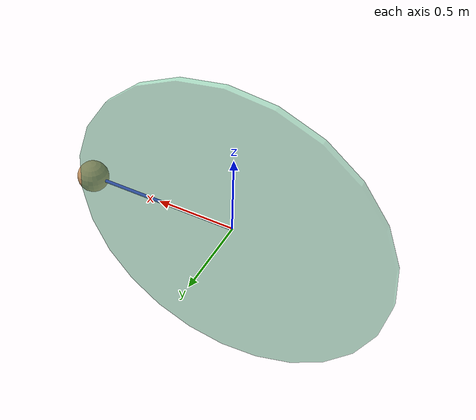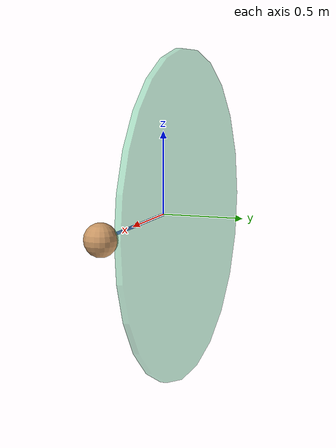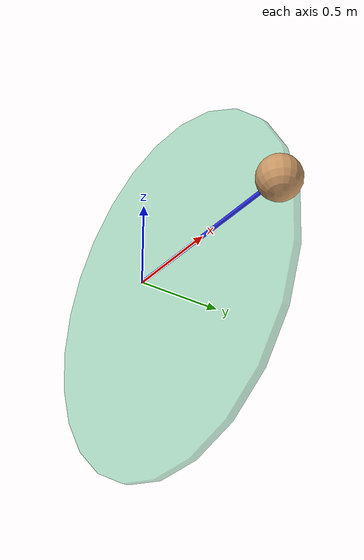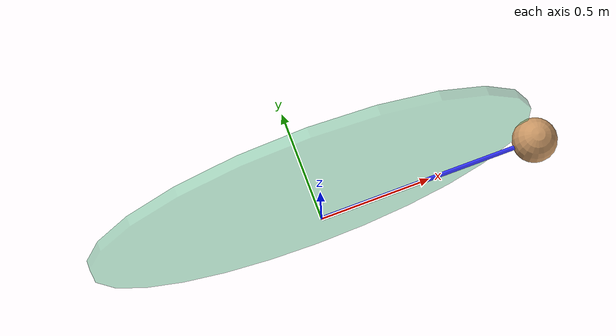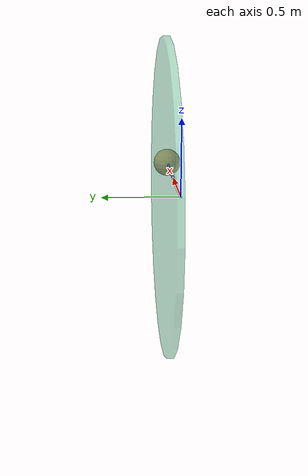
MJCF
<mujoco>
  <option integrator="RK4">
    <flag energy="enable"/>
  </option>

  <default>
    <geom rgba="0.8 0.6 .4 1"/>
    <site rgba="0.4 0.8 .6 .5"/>
  </default>

  <worldbody>
    <site name="decoration" type="cylinder" zaxis="0 -1 0" size="1 .02" pos="0 .1 0"/>
    <site name="world"/>
    <body pos="1 0 0">
      <joint name="x" type="slide" axis="1 0 0"/>
      <joint name="z" type="slide" axis="0 0 1"/>
      <geom name="query" type="sphere" size=".1" mass="1"/>
      <site name="body"/>
    </body>
  </worldbody>

  <tendon>
    <spatial width=".01" rgba=".2 .2 1 1" springlength=".5" stiffness="100" armature="5">
      <site site="world"/>
      <site site="body"/>
    </spatial>
  </tendon>
</mujoco>
